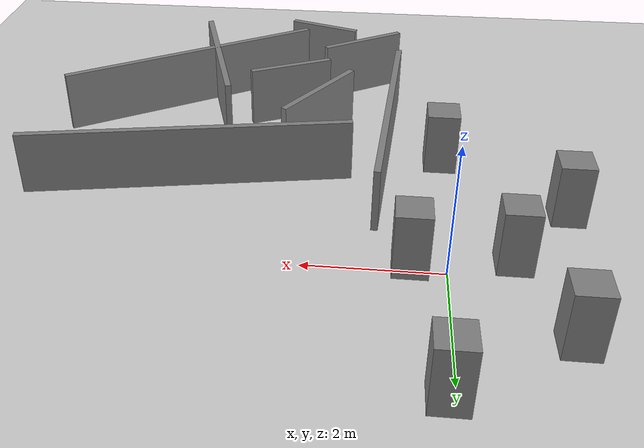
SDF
<?xml version='1.0' encoding='utf-8'?>
<sdf version="1.9">
  <world name="that">
    <physics name="1ms" type="dart">
      <max_step_size>0.001</max_step_size>
      <real_time_factor>1</real_time_factor>
      <real_time_update_rate>1000</real_time_update_rate>
    </physics>
    <plugin name="gz::sim::systems::Physics" filename="gz-sim-physics-system" />
    <plugin name="gz::sim::systems::UserCommands" filename="gz-sim-user-commands-system" />
    <plugin name="gz::sim::systems::SceneBroadcaster" filename="gz-sim-scene-broadcaster-system" />
    <plugin name="gz::sim::systems::Contact" filename="gz-sim-contact-system" />
    <plugin name="gz::sim::systems::Sensors" filename="gz-sim-sensors-system">
      <render_engine>ogre2</render_engine>
    </plugin>
    <gravity>0 0 -9.8</gravity>
    <magnetic_field>6e-06 2.3e-05 -4.2e-05</magnetic_field>
    <atmosphere type="adiabatic" />
    <scene>
      <ambient>0.4 0.4 0.4 1</ambient>
      <background>0.7 0.7 0.7 1</background>
      <shadows>true</shadows>
    </scene>
    <model name="ground_plane">
      <static>true</static>
      <link name="link">
        <collision name="collision">
          <geometry>
            <plane>
              <normal>0 0 1</normal>
              <size>100 100</size>
            </plane>
          </geometry>
          <surface>
            <friction>
              <ode />
            </friction>
            <bounce />
            <contact />
          </surface>
        </collision>
        <visual name="visual">
          <geometry>
            <plane>
              <normal>0 0 1</normal>
              <size>100 100</size>
            </plane>
          </geometry>
          <material>
            <ambient>0.8 0.8 0.8 1</ambient>
            <diffuse>0.8 0.8 0.8 1</diffuse>
            <specular>0.8 0.8 0.8 1</specular>
          </material>
        </visual>
        <pose>0 0 0 0 -0 0</pose>
        <inertial>
          <pose>0 0 0 0 -0 0</pose>
          <mass>1</mass>
          <inertia>
            <ixx>1</ixx>
            <ixy>0</ixy>
            <ixz>0</ixz>
            <iyy>1</iyy>
            <iyz>0</iyz>
            <izz>1</izz>
          </inertia>
        </inertial>
        <enable_wind>false</enable_wind>
      </link>
      <pose>0 0 0 0 -0 0</pose>
      <self_collide>false</self_collide>
    </model>
    <light name="sun" type="directional">
      <pose>0 0 10 0 -0 0</pose>
      <cast_shadows>true</cast_shadows>
      <intensity>1</intensity>
      <direction>-0.5 0.1 -0.9</direction>
      <diffuse>0.8 0.8 0.8 1</diffuse>
      <specular>0.2 0.2 0.2 1</specular>
      <attenuation>
        <range>1000</range>
        <linear>0.01</linear>
        <constant>0.90000000000000002</constant>
        <quadratic>0.001</quadratic>
      </attenuation>
      <spot>
        <inner_angle>0</inner_angle>
        <outer_angle>0</outer_angle>
        <falloff>0</falloff>
      </spot>
    </light>
  <model name="wall_1">
            <static>true</static>
            <type>wall</type>
            <pose>3.900000 -1.850000 0.500000 0 0 -2.963500</pose>
            <link name="link">
                <collision name="collision">
                    <geometry><box><size>5.080354 0.100000 1.000000</size></box></geometry>
                </collision>
                <visual name="visual">
                    <geometry><box><size>5.080354 0.100000 1.000000</size></box></geometry>
                    <material>
                        <diffuse>0.5 0.5 0.5 1</diffuse>
                    </material>
                </visual></link></model><model name="wall_2">
            <static>true</static>
            <type>wall</type>
            <pose>4.350000 -4.600000 0.500000 0 0 0.551655</pose>
            <link name="link">
                <collision name="collision">
                    <geometry><box><size>4.579301 0.100000 1.000000</size></box></geometry>
                </collision>
                <visual name="visual">
                    <geometry><box><size>4.579301 0.100000 1.000000</size></box></geometry>
                    <material>
                        <diffuse>0.5 0.5 0.5 1</diffuse>
                    </material>
                </visual></link></model><model name="wall_3">
            <static>true</static>
            <type>wall</type>
            <pose>0.850000 -2.950000 0.500000 0 0 -1.643837</pose>
            <link name="link">
                <collision name="collision">
                    <geometry><box><size>4.110961 0.100000 1.000000</size></box></geometry>
                </collision>
                <visual name="visual">
                    <geometry><box><size>4.110961 0.100000 1.000000</size></box></geometry>
                    <material>
                        <diffuse>0.5 0.5 0.5 1</diffuse>
                    </material>
                </visual></link></model><model name="wall_4">
            <static>true</static>
            <type>wall</type>
            <pose>2.550000 -4.200000 0.500000 0 0 -2.709185</pose>
            <link name="link">
                <collision name="collision">
                    <geometry><box><size>1.431782 0.100000 1.000000</size></box></geometry>
                </collision>
                <visual name="visual">
                    <geometry><box><size>1.431782 0.100000 1.000000</size></box></geometry>
                    <material>
                        <diffuse>0.5 0.5 0.5 1</diffuse>
                    </material>
                </visual></link></model><model name="wall_5">
            <static>true</static>
            <type>wall</type>
            <pose>2.100000 -6.000000 0.500000 0 0 -0.321751</pose>
            <link name="link">
                <collision name="collision">
                    <geometry><box><size>1.264911 0.100000 1.000000</size></box></geometry>
                </collision>
                <visual name="visual">
                    <geometry><box><size>1.264911 0.100000 1.000000</size></box></geometry>
                    <material>
                        <diffuse>0.5 0.5 0.5 1</diffuse>
                    </material>
                </visual></link></model><model name="wall_6">
            <static>true</static>
            <type>wall</type>
            <pose>3.900000 -4.650000 0.500000 0 0 1.858852</pose>
            <link name="link">
                <collision name="collision">
                    <geometry><box><size>2.816026 0.100000 1.000000</size></box></geometry>
                </collision>
                <visual name="visual">
                    <geometry><box><size>2.816026 0.100000 1.000000</size></box></geometry>
                    <material>
                        <diffuse>0.5 0.5 0.5 1</diffuse>
                    </material>
                </visual></link></model><model name="wall_7">
            <static>true</static>
            <type>wall</type>
            <pose>2.000000 -3.350000 0.500000 0 0 -2.158799</pose>
            <link name="link">
                <collision name="collision">
                    <geometry><box><size>1.802776 0.100000 1.000000</size></box></geometry>
                </collision>
                <visual name="visual">
                    <geometry><box><size>1.802776 0.100000 1.000000</size></box></geometry>
                    <material>
                        <diffuse>0.5 0.5 0.5 1</diffuse>
                    </material>
                </visual></link></model><model name="wall_8">
            <static>true</static>
            <type>wall</type>
            <pose>1.350000 -5.400000 0.500000 0 0 0.551655</pose>
            <link name="link">
                <collision name="collision">
                    <geometry><box><size>1.526434 0.100000 1.000000</size></box></geometry>
                </collision>
                <visual name="visual">
                    <geometry><box><size>1.526434 0.100000 1.000000</size></box></geometry>
                    <material>
                        <diffuse>0.5 0.5 0.5 1</diffuse>
                    </material>
                </visual></link></model><model name="box_2">
            <static>true</static>
            <type>box</type>
            <pose>0.100000 2.200000 0.500000 0 0 0</pose>
            <link name="link">
                <collision name="collision">
                    <geometry><box><size>0.500000 0.500000 1.000000</size></box></geometry>
                </collision>
                <visual name="visual">
                    <geometry><box><size>0.500000 0.500000 1.000000</size></box></geometry>
                    <material>
                        <diffuse>0.5 0.5 0.5 1</diffuse>
                    </material>
                </visual></link></model><model name="box_3">
            <static>true</static>
            <type>box</type>
            <pose>0.500000 -0.100000 0.500000 0 0 0</pose>
            <link name="link">
                <collision name="collision">
                    <geometry><box><size>0.500000 0.500000 1.000000</size></box></geometry>
                </collision>
                <visual name="visual">
                    <geometry><box><size>0.500000 0.500000 1.000000</size></box></geometry>
                    <material>
                        <diffuse>0.5 0.5 0.5 1</diffuse>
                    </material>
                </visual></link></model><model name="box_4">
            <static>true</static>
            <type>box</type>
            <pose>-1.800000 -1.500000 0.500000 0 0 0</pose>
            <link name="link">
                <collision name="collision">
                    <geometry><box><size>0.500000 0.500000 1.000000</size></box></geometry>
                </collision>
                <visual name="visual">
                    <geometry><box><size>0.500000 0.500000 1.000000</size></box></geometry>
                    <material>
                        <diffuse>0.5 0.5 0.5 1</diffuse>
                    </material>
                </visual></link></model><model name="box_5">
            <static>true</static>
            <type>box</type>
            <pose>0.000000 -2.800000 0.500000 0 0 0</pose>
            <link name="link">
                <collision name="collision">
                    <geometry><box><size>0.500000 0.500000 1.000000</size></box></geometry>
                </collision>
                <visual name="visual">
                    <geometry><box><size>0.500000 0.500000 1.000000</size></box></geometry>
                    <material>
                        <diffuse>0.5 0.5 0.5 1</diffuse>
                    </material>
                </visual></link></model><model name="box_6">
            <static>true</static>
            <type>box</type>
            <pose>-0.900000 -0.300000 0.500000 0 0 0</pose>
            <link name="link">
                <collision name="collision">
                    <geometry><box><size>0.500000 0.500000 1.000000</size></box></geometry>
                </collision>
                <visual name="visual">
                    <geometry><box><size>0.500000 0.500000 1.000000</size></box></geometry>
                    <material>
                        <diffuse>0.5 0.5 0.5 1</diffuse>
                    </material>
                </visual></link></model><model name="box_1">
            <static>false</static>
            <type>box</type>
            <pose>-1.500000 1.200000 0.500000 0 0 0</pose>
            <link name="link">
                <collision name="collision">
                    <geometry><box><size>0.500000 0.500000 1.000000</size></box></geometry>
                </collision>
                <visual name="visual">
                    <geometry><box><size>0.500000 0.500000 1.000000</size></box></geometry>
                    <material>
                        <diffuse>0.5 0.5 0.5 1</diffuse>
                    </material>
                </visual><inertial>
                <mass>250.000000</mass>
                <inertia>
                    <ixx>26.041667</ixx><ixy>0</ixy><ixz>0</ixz>
                    <iyy>26.041667</iyy><iyz>0</iyz>
                    <izz>10.416667</izz>
                </inertia>
            </inertial><gravity>false</gravity></link><motion><type>linear</type><velocity>10.000000</velocity><std>0.100000</std><point><x>-1.800000</x><y>0.100000</y></point><point><x>-0.900000</x><y>3.600000</y></point></motion></model></world>
</sdf>
